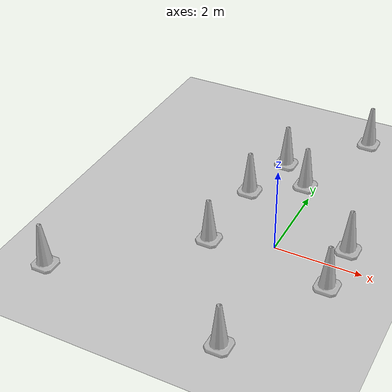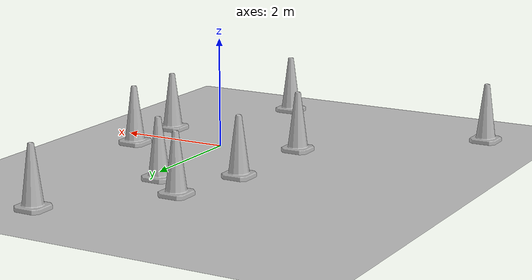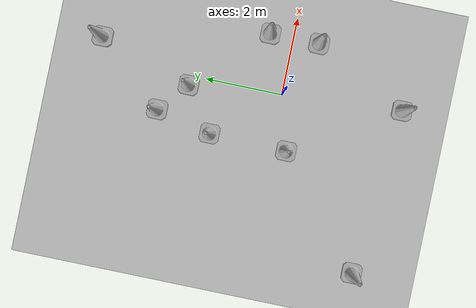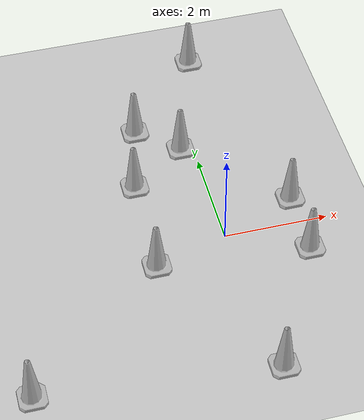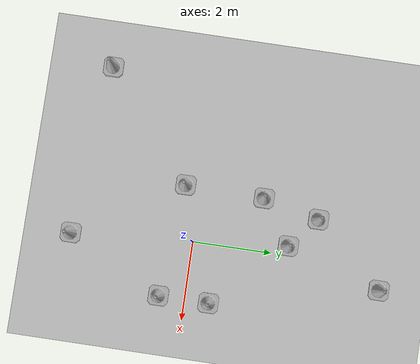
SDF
<sdf version="1.7">
 <world name="default">
  <light name="sun" type="directional">
   <pose>0 0 10 0 -0 0</pose>
   <diffuse>0.8 0.8 0.8 1</diffuse>
   <specular>0.2 0.2 0.2 1</specular>
   <attenuation>
    <range>1000</range>
    <constant>0.9</constant>
    <linear>0.01</linear>
    <quadratic>0.001</quadratic>
   </attenuation>
   <direction>-0.5 0.1 -0.9</direction>
   <spot><inner_angle>0</inner_angle><outer_angle>0</outer_angle><falloff>0</falloff></spot>
  </light>
  <model name="ground_plane">
   <static>1</static>
   <link name="link">
    <collision name="collision">
     <geometry><plane><normal>0 0 1</normal><size>100 100</size></plane></geometry>
     <surface>
      <contact><collide_bitmask>65535</collide_bitmask></contact>
      <friction><ode><mu>100</mu><mu2>50</mu2></ode></friction>
     </surface>
    </collision>
    <visual name="visual">
     <cast_shadows>0</cast_shadows>
     <geometry><plane><normal>0 0 1</normal><size>100 100</size></plane></geometry>
     <material>
      <script><uri>file://media/materials/scripts/gazebo.material</uri><name>Gazebo/Grey</name></script>
     </material>
    </visual>
   </link>
  </model>
  <gravity>0 0 -9.8</gravity>
  <magnetic_field>6e-06 2.3e-05 -4.2e-05</magnetic_field>
  <atmosphere type="adiabatic"/>
  <physics type="ode">
   <max_step_size>0.001</max_step_size>
   <real_time_factor>1</real_time_factor>
   <real_time_update_rate>1000</real_time_update_rate>
  </physics>
  <scene><ambient>0.4 0.4 0.4 1</ambient><background>0.7 0.7 0.7 1</background><shadows>1</shadows></scene>
  <audio><device>default</device></audio>
  <spherical_coordinates>
   <surface_model>EARTH_WGS84</surface_model>
   <latitude_deg>0</latitude_deg>
   <longitude_deg>0</longitude_deg>
   <elevation>0</elevation>
   <heading_deg>0</heading_deg>
  </spherical_coordinates>
  <model name="Construction Cone">
   <link name="link">
    <collision name="collision">
     <geometry>
      <mesh><scale>10 10 10</scale><uri>model://construction_cone/meshes/construction_cone.dae</uri></mesh>
     </geometry>
    </collision>
    <visual name="visual">
     <geometry>
      <mesh><scale>10 10 10</scale><uri>model://construction_cone/meshes/construction_cone.dae</uri></mesh>
     </geometry>
    </visual>
    <inertial>
     <inertia><ixx>1</ixx><ixy>0</ixy><ixz>0</ixz><iyy>1</iyy><iyz>0</iyz><izz>1</izz></inertia>
     <mass>1</mass>
    </inertial>
   </link>
   <pose>1.47016 0.611605 0 -0 -0 -0</pose>
  </model>
  <model name="Construction Cone_0">
   <link name="link">
    <collision name="collision">
     <geometry>
      <mesh><scale>10 10 10</scale><uri>model://construction_cone/meshes/construction_cone.dae</uri></mesh>
     </geometry>
    </collision>
    <visual name="visual">
     <geometry>
      <mesh><scale>10 10 10</scale><uri>model://construction_cone/meshes/construction_cone.dae</uri></mesh>
     </geometry>
    </visual>
    <inertial>
     <inertia><ixx>1</ixx><ixy>0</ixy><ixz>0</ixz><iyy>1</iyy><iyz>0</iyz><izz>1</izz></inertia>
     <mass>1</mass>
    </inertial>
   </link>
   <pose>1.4674 -0.664813 -1e-05 -1e-06 0 0</pose>
  </model>
  <model name="Construction Cone_0">
   <link name="link">
    <collision name="collision">
     <geometry>
      <mesh><scale>10 10 10</scale><uri>model://construction_cone/meshes/construction_cone.dae</uri></mesh>
     </geometry>
    </collision>
    <visual name="visual">
     <geometry>
      <mesh><scale>10 10 10</scale><uri>model://construction_cone/meshes/construction_cone.dae</uri></mesh>
     </geometry>
    </visual>
    <inertial>
     <inertia><ixx>1</ixx><ixy>0</ixy><ixz>0</ixz><iyy>1</iyy><iyz>0</iyz><izz>1</izz></inertia>
     <mass>1</mass>
    </inertial>
   </link>
   <pose>1.4674 -0.664813 -1e-05 -1e-06 0 0</pose>
  </model>
  <model name="Construction Cone_0">
   <link name="link">
    <collision name="collision">
     <geometry>
      <mesh><scale>10 10 10</scale><uri>model://construction_cone/meshes/construction_cone.dae</uri></mesh>
     </geometry>
    </collision>
    <visual name="visual">
     <geometry>
      <mesh><scale>10 10 10</scale><uri>model://construction_cone/meshes/construction_cone.dae</uri></mesh>
     </geometry>
    </visual>
    <inertial>
     <inertia><ixx>1</ixx><ixy>0</ixy><ixz>0</ixz><iyy>1</iyy><iyz>0</iyz><izz>1</izz></inertia>
     <mass>1</mass>
    </inertial>
   </link>
   <pose>1.4674 -0.664813 -1e-05 -1e-06 0 0</pose>
  </model>
  <model name="Construction Cone_1">
   <link name="link">
    <collision name="collision">
     <geometry>
      <mesh><scale>10 10 10</scale><uri>model://construction_cone/meshes/construction_cone.dae</uri></mesh>
     </geometry>
    </collision>
    <visual name="visual">
     <geometry>
      <mesh><scale>10 10 10</scale><uri>model://construction_cone/meshes/construction_cone.dae</uri></mesh>
     </geometry>
    </visual>
    <inertial>
     <inertia><ixx>1</ixx><ixy>0</ixy><ixz>0</ixz><iyy>1</iyy><iyz>0</iyz><izz>1</izz></inertia>
     <mass>1</mass>
    </inertial>
   </link>
   <pose>0.526732 4.82523 -0 0 -1e-06 0</pose>
  </model>
  <model name="Construction Cone_2">
   <link name="link">
    <collision name="collision">
     <geometry>
      <mesh><scale>10 10 10</scale><uri>model://construction_cone/meshes/construction_cone.dae</uri></mesh>
     </geometry>
    </collision>
    <visual name="visual">
     <geometry>
      <mesh><scale>10 10 10</scale><uri>model://construction_cone/meshes/construction_cone.dae</uri></mesh>
     </geometry>
    </visual>
    <inertial>
     <inertia><ixx>1</ixx><ixy>0</ixy><ixz>0</ixz><iyy>1</iyy><iyz>0</iyz><izz>1</izz></inertia>
     <mass>1</mass>
    </inertial>
   </link>
   <pose>-1.02807 3.07038 -0 0 -0 0</pose>
  </model>
  <model name="Construction Cone_3">
   <link name="link">
    <collision name="collision">
     <geometry>
      <mesh><scale>10 10 10</scale><uri>model://construction_cone/meshes/construction_cone.dae</uri></mesh>
     </geometry>
    </collision>
    <visual name="visual">
     <geometry>
      <mesh><scale>10 10 10</scale><uri>model://construction_cone/meshes/construction_cone.dae</uri></mesh>
     </geometry>
    </visual>
    <inertial>
     <inertia><ixx>1</ixx><ixy>0</ixy><ixz>0</ixz><iyy>1</iyy><iyz>0</iyz><izz>1</izz></inertia>
     <mass>1</mass>
    </inertial>
   </link>
   <pose>-1.36127 1.62655 -0 0 1e-06 0</pose>
  </model>
  <model name="Construction Cone_4">
   <link name="link">
    <collision name="collision">
     <geometry>
      <mesh><scale>10 10 10</scale><uri>model://construction_cone/meshes/construction_cone.dae</uri></mesh>
     </geometry>
    </collision>
    <visual name="visual">
     <geometry>
      <mesh><scale>10 10 10</scale><uri>model://construction_cone/meshes/construction_cone.dae</uri></mesh>
     </geometry>
    </visual>
    <inertial>
     <inertia><ixx>1</ixx><ixy>0</ixy><ixz>0</ixz><iyy>1</iyy><iyz>0</iyz><izz>1</izz></inertia>
     <mass>1</mass>
    </inertial>
   </link>
   <pose>-0.250622 2.40403 -0 0 -1e-06 0</pose>
  </model>
  <model name="Construction Cone_5">
   <link name="link">
    <collision name="collision">
     <geometry>
      <mesh><scale>10 10 10</scale><uri>model://construction_cone/meshes/construction_cone.dae</uri></mesh>
     </geometry>
    </collision>
    <visual name="visual">
     <geometry>
      <mesh><scale>10 10 10</scale><uri>model://construction_cone/meshes/construction_cone.dae</uri></mesh>
     </geometry>
    </visual>
    <inertial>
     <inertia><ixx>1</ixx><ixy>0</ixy><ixz>0</ixz><iyy>1</iyy><iyz>0</iyz><izz>1</izz></inertia>
     <mass>1</mass>
    </inertial>
   </link>
   <pose>-1.40569 -0.394832 -0 0 -0 0</pose>
  </model>
  <model name="Construction Cone_6">
   <link name="link">
    <collision name="collision">
     <geometry>
      <mesh><scale>10 10 10</scale><uri>model://construction_cone/meshes/construction_cone.dae</uri></mesh>
     </geometry>
    </collision>
    <visual name="visual">
     <geometry>
      <mesh><scale>10 10 10</scale><uri>model://construction_cone/meshes/construction_cone.dae</uri></mesh>
     </geometry>
    </visual>
    <inertial>
     <inertia><ixx>1</ixx><ixy>0</ixy><ixz>0</ixz><iyy>1</iyy><iyz>0</iyz><izz>1</izz></inertia>
     <mass>1</mass>
    </inertial>
   </link>
   <pose>-4.1379 -2.68278 -1e-05 0 -0 0</pose>
  </model>
  <model name="Construction Cone_7">
   <link name="link">
    <collision name="collision">
     <geometry>
      <mesh><scale>10 10 10</scale><uri>model://construction_cone/meshes/construction_cone.dae</uri></mesh>
     </geometry>
    </collision>
    <visual name="visual">
     <geometry>
      <mesh><scale>10 10 10</scale><uri>model://construction_cone/meshes/construction_cone.dae</uri></mesh>
     </geometry>
    </visual>
    <inertial>
     <inertia><ixx>1</ixx><ixy>0</ixy><ixz>0</ixz><iyy>1</iyy><iyz>0</iyz><izz>1</izz></inertia>
     <mass>1</mass>
    </inertial>
   </link>
   <pose>0.215853 -3.10484 -0 0 -1e-06 0</pose>
  </model>
 </world>
</sdf>
